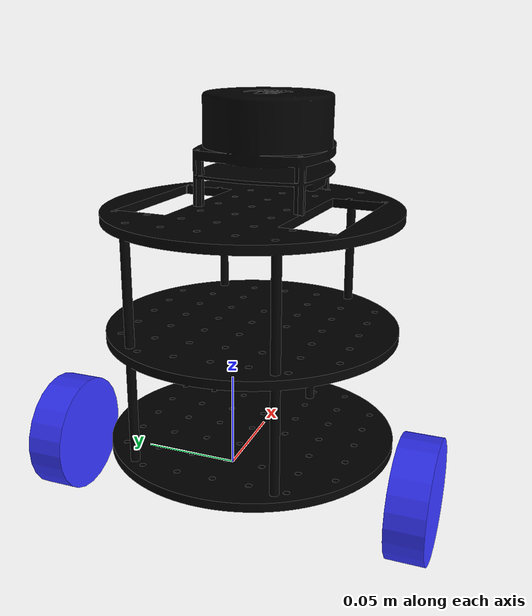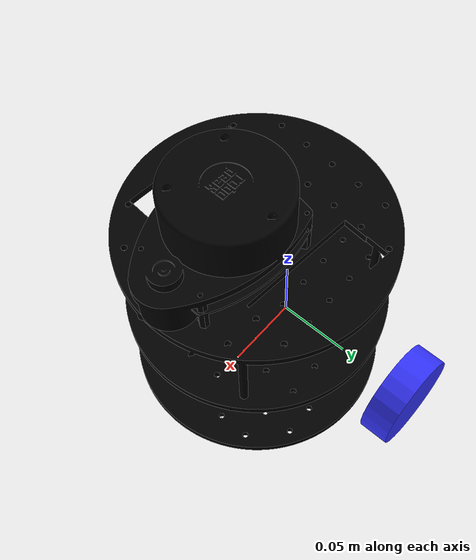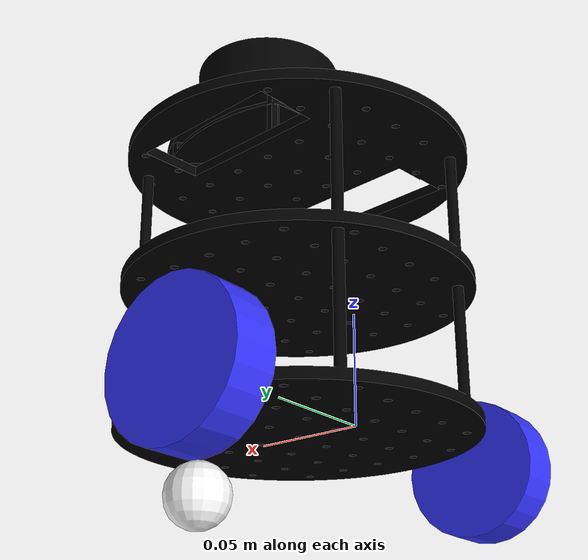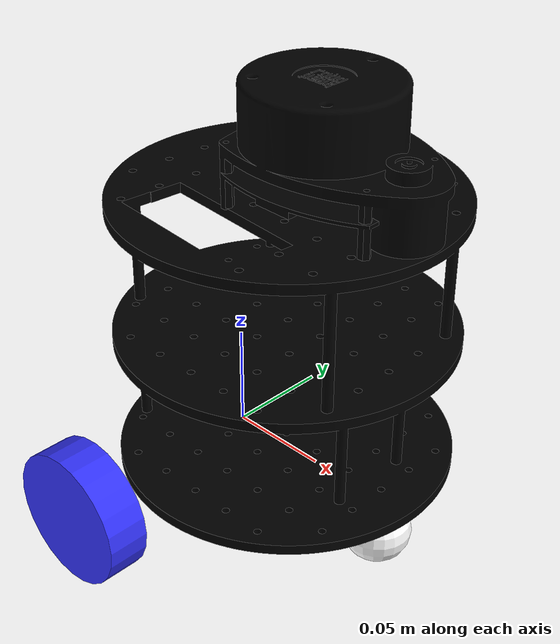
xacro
<?xml version="1.0"?>
<robot xmlns:xacro="http://www.ros.org/wiki/xacro"  name="robot">

    <xacro:arg name="use_ros2_control" default="true" />
    <xacro:arg name="sim_mode" default="false" />

    <xacro:include filename="robot_core.xacro" />

    <xacro:if value="$(arg use_ros2_control)">
        <xacro:include filename="ros2_control.xacro" />
    </xacro:if>
    <xacro:unless value="$(arg use_ros2_control)">
        <xacro:include filename="gazebo_control.xacro" />
    </xacro:unless>
    <xacro:include filename="lidar.xacro" />

</robot>

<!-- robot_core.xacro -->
<robot xmlns:xacro="http://www.ros.org/wiki/xacro" >

    <xacro:include filename="inertial_macros.xacro"/>

    <material name="white">
        <color rgba="1 1 1 1" />
    </material>

    <material name="orange">
        <color rgba="1 0.3 0.1 1"/>
    </material>

    <material name="yellow">
        <color rgba="1 1 0 1"/>
    </material>

    <material name="blue">
        <color rgba="0.2 0.2 1 1"/>
    </material>

    <material name="black">
        <color rgba="0 0 0 1"/>
    </material>

    <material name="red">
        <color rgba="1 0 0 1"/>
    </material>

    <!-- BASE LINK -->

    <link name="base_link">

    </link>

    <!-- BASE_FOOTPRINT LINK -->

    <joint name="base_footprint_joint" type="fixed">
        <parent link="base_link"/>
        <child link="base_footprint"/>
        <origin xyz="0 0 0" rpy="0 0 0"/>
    </joint>

    <link name="base_footprint">
    </link>

    <!-- CHASSIS LINK -->

    <joint name="chassis_joint" type="fixed">
        <parent link="base_link"/>
        <child link="chassis"/>
        <origin xyz="-0.05 0 0"/>
    </joint>

    <link name="chassis">
        <visual>
            <origin xyz="0.08 0 0"/>
            <geometry>
                <mesh filename="package://test_bot/meshes/Chassis.stl" scale="0.001 0.001 0.001" />
            </geometry>
            <material name="black"/>
        </visual>

        <collision>
            <origin xyz="0.08 0 0"/>
            <geometry>
                <cylinder radius="0.08" length="0.003"/>
            </geometry>
        </collision>

        <xacro:inertial_cylinder mass="0.1" length="0.005" radius="0.08">
            <origin xyz="0.08 0 0" rpy="0 0 0"/>
        </xacro:inertial_cylinder>
    </link>

    <gazebo reference="chassis">
        <material>Gazebo/Black</material>
    </gazebo>

    <!-- LEFT WHEEL LINK -->

    <joint name="left_wheel_joint" type="continuous">
        <parent link="base_link"/>
        <child link="left_wheel"/>
        <origin xyz="0 0.1 0" rpy="-${pi/2} 0 0" />
        <axis xyz="0 0 1"/>
    </joint>

    <link name="left_wheel">
        <visual>
            <geometry>
                <cylinder radius="0.0325" length="0.02"/>
            </geometry>
            <material name="blue"/>
        </visual>

        <collision>
            <geometry>
                <sphere radius="0.0325" />
            </geometry>
        </collision>

        <xacro:inertial_cylinder mass="0.1" length="0.02" radius="0.0325">
            <origin xyz="0 0 0" rpy="0 0 0"/>
        </xacro:inertial_cylinder>
    </link>

    <gazebo reference="left_wheel">
        <material>Gazebo/Blue</material>
    </gazebo>

    <!-- RIGHT WHEEL LINK -->

    <joint name="right_wheel_joint" type="continuous">
        <parent link="base_link"/>
        <child link="right_wheel"/>
        <origin xyz="0 -0.1 0" rpy="${pi/2} 0 0" />
        <axis xyz="0 0 -1"/>
    </joint>

    <link name="right_wheel">
        <visual>
            <geometry>
                <cylinder radius="0.0325" length="0.02"/>
            </geometry>
            <material name="blue"/>
        </visual>

        <collision>
            <geometry>
                <sphere radius="0.0325" />
            </geometry>
        </collision>

        <xacro:inertial_cylinder mass="0.1" length="0.02" radius="0.0325">
            <origin xyz="0 0 0" rpy="0 0 0"/>
        </xacro:inertial_cylinder>
    </link>

    <gazebo reference="right_wheel">
        <material>Gazebo/Blue</material>
    </gazebo>

    <!-- CASTER WHEEL LINK -->

    <joint name="caster_wheel_joint" type="fixed">
        <parent link="chassis"/>
        <child link="caster_wheel"/>
        <origin xyz="0.14 0 -0.01625"/>
    </joint>

    <link name="caster_wheel">
        <visual>
            <geometry>
                <sphere radius="0.01625"/>
            </geometry>
            <material name="white"/>
        </visual>
        <collision>
            <geometry>
                <sphere radius="0.01625"/>
            </geometry>
        </collision>
        <xacro:inertial_sphere mass="0.1" radius="0.01625">
            <origin xyz="0 0 0" rpy="0 0 0"/>
        </xacro:inertial_sphere>
    </link>

    <gazebo reference="caster_wheel">
        <material>Gazebo/White</material>
        <mu1 value="0.001"/>
        <mu2 value="0.001"/>
    </gazebo>

</robot>

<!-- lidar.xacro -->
<robot xmlns:xacro="http://www.ros.org/wiki/xacro" >

    <joint name="laser_joint" type="fixed">
        <parent link="chassis"/>
        <child link="laser_frame"/>
        <origin xyz="0.1 0 0.135" rpy="0 0 0"/>
    </joint>

    <link name="laser_frame">
        <visual>
            <geometry>
                <mesh filename="package://test_bot/meshes/Rplidar.stl" scale="0.001 0.001 0.001" />
            </geometry>
            <material name="black"/>
        </visual>
        <collision>
            <geometry>
                <mesh filename="package://test_bot/meshes/Rplidar.stl" scale="0.001 0.001 0.001" />
            </geometry>
        </collision>
        <xacro:inertial_cylinder mass="0.1" length="0.05" radius="0.035">
            <origin xyz="0 0 0" rpy="0 0 0"/>
        </xacro:inertial_cylinder>
    </link>

    <gazebo reference="laser_frame">
        <material>Gazebo/Black</material>

        <sensor name="laser" type="ray">
            <pose> 0 0 0 0 0 0 </pose>
            <visualize>false</visualize>
            <update_rate>10</update_rate>
            <ray>
                <scan>
                    <horizontal>
                        <samples>360</samples>
                        <min_angle>-3.14</min_angle>
                        <max_angle>3.14</max_angle>
                    </horizontal>
                </scan>
                <range>
                    <min>0.3</min>
                    <max>12</max>
                </range>
            </ray>
            <plugin name="laser_controller" filename="libgazebo_ros_ray_sensor.so">
                <ros>
                    <remapping>~/out:=scan</remapping>
                </ros>
                <output_type>sensor_msgs/LaserScan</output_type>
                <frame_name>laser_frame</frame_name>
            </plugin>
        </sensor>
    </gazebo>

</robot>
